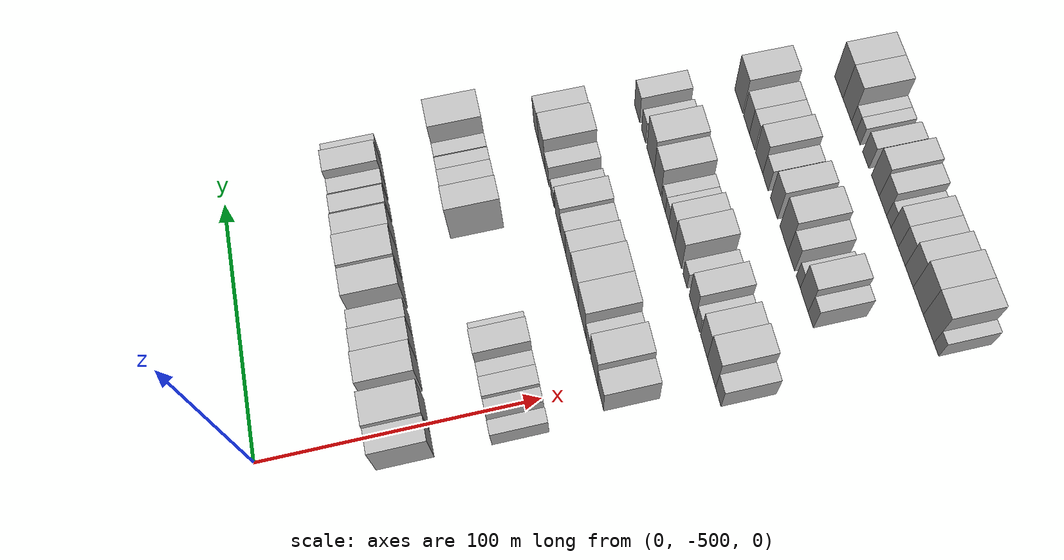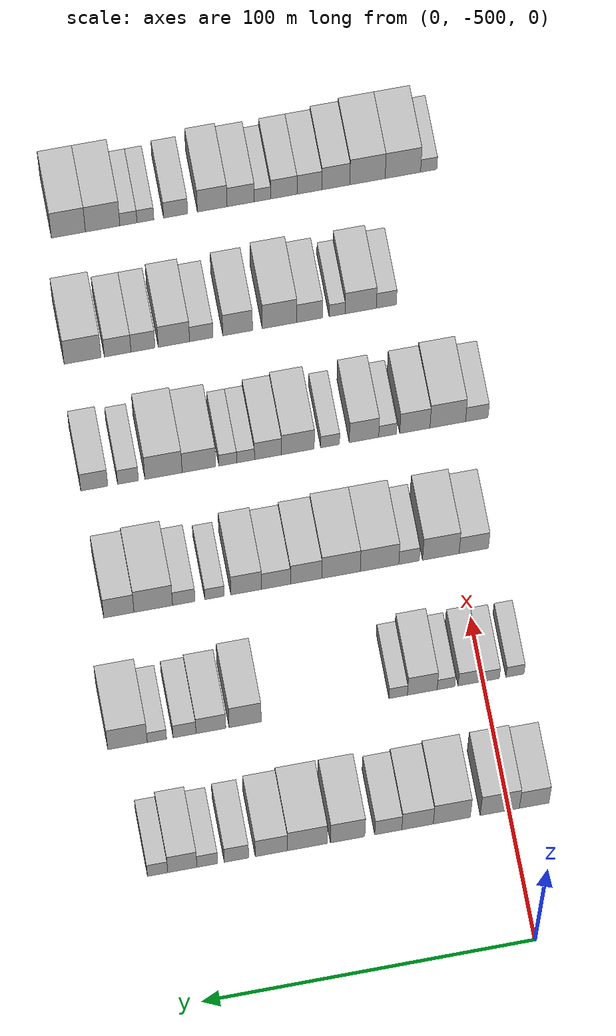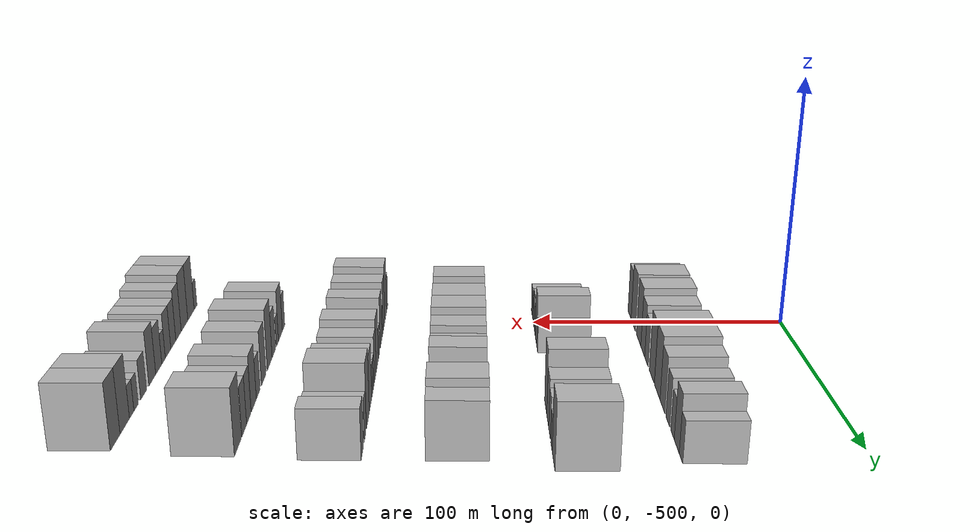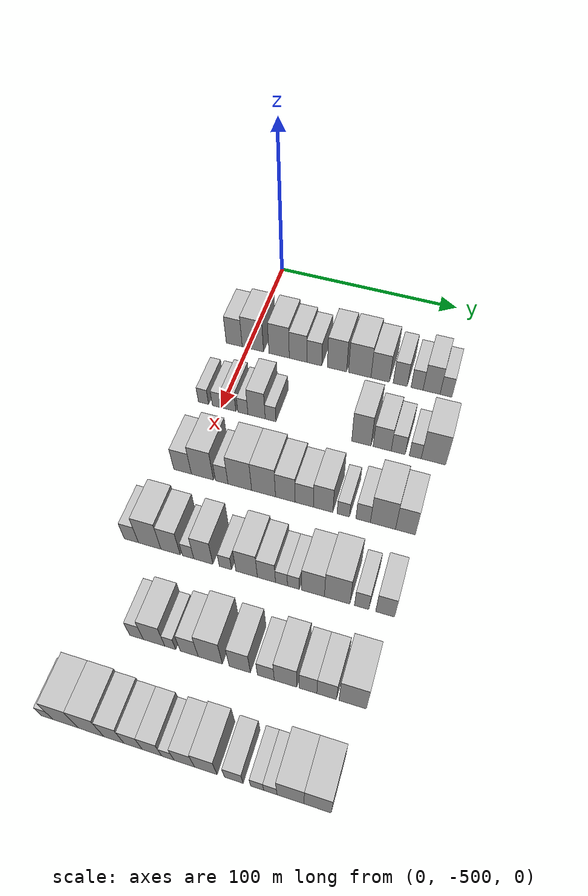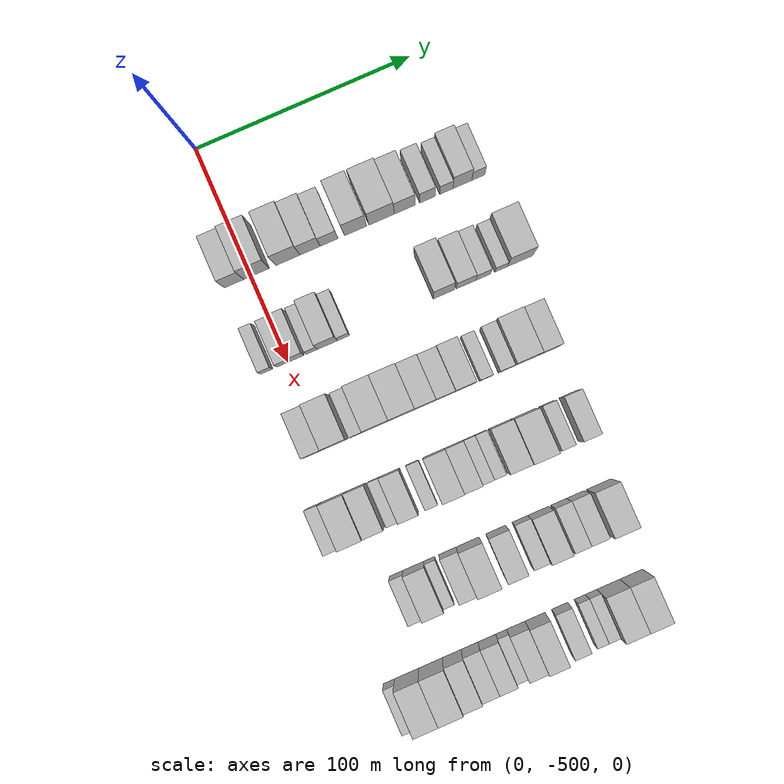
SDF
<sdf version="1.6">
 <world name="default">
  <model name="building_15">
   <static>1</static>
   <pose>50.0000 -507.4987 0 0.000000 0.000000 0.000000</pose>
   <link name="link">
    <pose>0 0 10.50 0 0 0</pose>
    <collision name="collision"><geometry><box><size>20.0000 8.9138 21.0000</size></box></geometry></collision>
    <visual name="visual">
     <cast_shadows>0</cast_shadows>
     <geometry><box><size>20.0000 8.9138 21.0000</size></box></geometry>
     <material>
      <script>
       <uri>model://HANNAS_wall/materials/scripts</uri>
       <uri>model://HANNAS_wall/materials/textures</uri>
       <name>vrc/HANNAS_wall</name>
      </script>
     </material>
    </visual>
   </link>
  </model>
  <model name="building_16">
   <static>1</static>
   <pose>50.0000 -497.1252 0 0.000000 0.000000 0.000000</pose>
   <link name="link">
    <pose>0 0 12.00 0 0 0</pose>
    <collision name="collision"><geometry><box><size>20.0000 11.8332 24.0000</size></box></geometry></collision>
    <visual name="visual">
     <cast_shadows>0</cast_shadows>
     <geometry><box><size>20.0000 11.8332 24.0000</size></box></geometry>
     <material>
      <script>
       <uri>model://HANNAS_wall/materials/scripts</uri>
       <uri>model://HANNAS_wall/materials/textures</uri>
       <name>vrc/HANNAS_wall</name>
      </script>
     </material>
    </visual>
   </link>
  </model>
  <model name="building_17">
   <static>1</static>
   <pose>50.0000 -482.6273 0 0.000000 0.000000 0.000000</pose>
   <link name="link">
    <pose>0 0 12.00 0 0 0</pose>
    <collision name="collision"><geometry><box><size>20.0000 11.1627 24.0000</size></box></geometry></collision>
    <visual name="visual">
     <cast_shadows>0</cast_shadows>
     <geometry><box><size>20.0000 11.1627 24.0000</size></box></geometry>
     <material>
      <script>
       <uri>model://HANNAS_wall/materials/scripts</uri>
       <uri>model://HANNAS_wall/materials/textures</uri>
       <name>vrc/HANNAS_wall</name>
      </script>
     </material>
    </visual>
   </link>
  </model>
  <model name="building_18">
   <static>1</static>
   <pose>50.0000 -472.3004 0 0.000000 0.000000 0.000000</pose>
   <link name="link">
    <pose>0 0 10.50 0 0 0</pose>
    <collision name="collision"><geometry><box><size>20.0000 9.4911 21.0000</size></box></geometry></collision>
    <visual name="visual">
     <cast_shadows>0</cast_shadows>
     <geometry><box><size>20.0000 9.4911 21.0000</size></box></geometry>
     <material>
      <script>
       <uri>model://HANNAS_wall/materials/scripts</uri>
       <uri>model://HANNAS_wall/materials/textures</uri>
       <name>vrc/HANNAS_wall</name>
      </script>
     </material>
    </visual>
   </link>
  </model>
  <model name="building_19">
   <static>1</static>
   <pose>50.0000 -463.4733 0 0.000000 0.000000 0.000000</pose>
   <link name="link">
    <pose>0 0 9.00 0 0 0</pose>
    <collision name="collision"><geometry><box><size>20.0000 8.1629 18.0000</size></box></geometry></collision>
    <visual name="visual">
     <cast_shadows>0</cast_shadows>
     <geometry><box><size>20.0000 8.1629 18.0000</size></box></geometry>
     <material>
      <script>
       <uri>model://HANNAS_wall/materials/scripts</uri>
       <uri>model://HANNAS_wall/materials/textures</uri>
       <name>vrc/HANNAS_wall</name>
      </script>
     </material>
    </visual>
   </link>
  </model>
  <model name="building_20">
   <static>1</static>
   <pose>50.0000 -451.2165 0 0.000000 0.000000 0.000000</pose>
   <link name="link">
    <pose>0 0 12.00 0 0 0</pose>
    <collision name="collision"><geometry><box><size>20.0000 10.3507 24.0000</size></box></geometry></collision>
    <visual name="visual">
     <cast_shadows>0</cast_shadows>
     <geometry><box><size>20.0000 10.3507 24.0000</size></box></geometry>
     <material>
      <script>
       <uri>model://HANNAS_wall/materials/scripts</uri>
       <uri>model://HANNAS_wall/materials/textures</uri>
       <name>vrc/HANNAS_wall</name>
      </script>
     </material>
    </visual>
   </link>
  </model>
  <model name="building_21">
   <static>1</static>
   <pose>50.0000 -439.0764 0 0.000000 0.000000 0.000000</pose>
   <link name="link">
    <pose>0 0 12.00 0 0 0</pose>
    <collision name="collision"><geometry><box><size>20.0000 11.9295 24.0000</size></box></geometry></collision>
    <visual name="visual">
     <cast_shadows>0</cast_shadows>
     <geometry><box><size>20.0000 11.9295 24.0000</size></box></geometry>
     <material>
      <script>
       <uri>model://HANNAS_wall/materials/scripts</uri>
       <uri>model://HANNAS_wall/materials/textures</uri>
       <name>vrc/HANNAS_wall</name>
      </script>
     </material>
    </visual>
   </link>
  </model>
  <model name="building_22">
   <static>1</static>
   <pose>50.0000 -428.2637 0 0.000000 0.000000 0.000000</pose>
   <link name="link">
    <pose>0 0 10.50 0 0 0</pose>
    <collision name="collision"><geometry><box><size>20.0000 9.6959 21.0000</size></box></geometry></collision>
    <visual name="visual">
     <cast_shadows>0</cast_shadows>
     <geometry><box><size>20.0000 9.6959 21.0000</size></box></geometry>
     <material>
      <script>
       <uri>model://HANNAS_wall/materials/scripts</uri>
       <uri>model://HANNAS_wall/materials/textures</uri>
       <name>vrc/HANNAS_wall</name>
      </script>
     </material>
    </visual>
   </link>
  </model>
  <model name="building_23">
   <static>1</static>
   <pose>50.0000 -417.7534 0 0.000000 0.000000 0.000000</pose>
   <link name="link">
    <pose>0 0 9.00 0 0 0</pose>
    <collision name="collision"><geometry><box><size>20.0000 7.3249 18.0000</size></box></geometry></collision>
    <visual name="visual">
     <cast_shadows>0</cast_shadows>
     <geometry><box><size>20.0000 7.3249 18.0000</size></box></geometry>
     <material>
      <script>
       <uri>model://HANNAS_wall/materials/scripts</uri>
       <uri>model://HANNAS_wall/materials/textures</uri>
       <name>vrc/HANNAS_wall</name>
      </script>
     </material>
    </visual>
   </link>
  </model>
  <model name="building_24">
   <static>1</static>
   <pose>50.0000 -408.9823 0 0.000000 0.000000 0.000000</pose>
   <link name="link">
    <pose>0 0 7.50 0 0 0</pose>
    <collision name="collision"><geometry><box><size>20.0000 6.2171 15.0000</size></box></geometry></collision>
    <visual name="visual">
     <cast_shadows>0</cast_shadows>
     <geometry><box><size>20.0000 6.2171 15.0000</size></box></geometry>
     <material>
      <script>
       <uri>model://HANNAS_wall/materials/scripts</uri>
       <uri>model://HANNAS_wall/materials/textures</uri>
       <name>vrc/HANNAS_wall</name>
      </script>
     </material>
    </visual>
   </link>
  </model>
  <model name="building_25">
   <static>1</static>
   <pose>50.0000 -401.4881 0 0.000000 0.000000 0.000000</pose>
   <link name="link">
    <pose>0 0 10.50 0 0 0</pose>
    <collision name="collision"><geometry><box><size>20.0000 8.7713 21.0000</size></box></geometry></collision>
    <visual name="visual">
     <cast_shadows>0</cast_shadows>
     <geometry><box><size>20.0000 8.7713 21.0000</size></box></geometry>
     <material>
      <script>
       <uri>model://HANNAS_wall/materials/scripts</uri>
       <uri>model://HANNAS_wall/materials/textures</uri>
       <name>vrc/HANNAS_wall</name>
      </script>
     </material>
    </visual>
   </link>
  </model>
  <model name="building_26">
   <static>1</static>
   <pose>50.0000 -394.0560 0 0.000000 0.000000 0.000000</pose>
   <link name="link">
    <pose>0 0 7.50 0 0 0</pose>
    <collision name="collision"><geometry><box><size>20.0000 6.0929 15.0000</size></box></geometry></collision>
    <visual name="visual">
     <cast_shadows>0</cast_shadows>
     <geometry><box><size>20.0000 6.0929 15.0000</size></box></geometry>
     <material>
      <script>
       <uri>model://HANNAS_wall/materials/scripts</uri>
       <uri>model://HANNAS_wall/materials/textures</uri>
       <name>vrc/HANNAS_wall</name>
      </script>
     </material>
    </visual>
   </link>
  </model>
  <model name="building_149">
   <static>1</static>
   <pose>90.0000 -509.5419 0 0.000000 0.000000 0.000000</pose>
   <link name="link">
    <pose>0 0 6.00 0 0 0</pose>
    <collision name="collision"><geometry><box><size>20.0000 5.4632 12.0000</size></box></geometry></collision>
    <visual name="visual">
     <cast_shadows>0</cast_shadows>
     <geometry><box><size>20.0000 5.4632 12.0000</size></box></geometry>
     <material>
      <script>
       <uri>model://HANNAS_wall/materials/scripts</uri>
       <uri>model://HANNAS_wall/materials/textures</uri>
       <name>vrc/HANNAS_wall</name>
      </script>
     </material>
    </visual>
   </link>
  </model>
  <model name="building_150">
   <static>1</static>
   <pose>90.0000 -502.0837 0 0.000000 0.000000 0.000000</pose>
   <link name="link">
    <pose>0 0 6.00 0 0 0</pose>
    <collision name="collision"><geometry><box><size>20.0000 5.4531 12.0000</size></box></geometry></collision>
    <visual name="visual">
     <cast_shadows>0</cast_shadows>
     <geometry><box><size>20.0000 5.4531 12.0000</size></box></geometry>
     <material>
      <script>
       <uri>model://HANNAS_wall/materials/scripts</uri>
       <uri>model://HANNAS_wall/materials/textures</uri>
       <name>vrc/HANNAS_wall</name>
      </script>
     </material>
    </visual>
   </link>
  </model>
  <model name="building_151">
   <static>1</static>
   <pose>90.0000 -495.8211 0 0.000000 0.000000 0.000000</pose>
   <link name="link">
    <pose>0 0 7.50 0 0 0</pose>
    <collision name="collision"><geometry><box><size>20.0000 7.0720 15.0000</size></box></geometry></collision>
    <visual name="visual">
     <cast_shadows>0</cast_shadows>
     <geometry><box><size>20.0000 7.0720 15.0000</size></box></geometry>
     <material>
      <script>
       <uri>model://HANNAS_wall/materials/scripts</uri>
       <uri>model://HANNAS_wall/materials/textures</uri>
       <name>vrc/HANNAS_wall</name>
      </script>
     </material>
    </visual>
   </link>
  </model>
  <model name="building_152">
   <static>1</static>
   <pose>90.0000 -488.6109 0 0.000000 0.000000 0.000000</pose>
   <link name="link">
    <pose>0 0 6.00 0 0 0</pose>
    <collision name="collision"><geometry><box><size>20.0000 5.3484 12.0000</size></box></geometry></collision>
    <visual name="visual">
     <cast_shadows>0</cast_shadows>
     <geometry><box><size>20.0000 5.3484 12.0000</size></box></geometry>
     <material>
      <script>
       <uri>model://HANNAS_wall/materials/scripts</uri>
       <uri>model://HANNAS_wall/materials/textures</uri>
       <name>vrc/HANNAS_wall</name>
      </script>
     </material>
    </visual>
   </link>
  </model>
  <model name="building_153">
   <static>1</static>
   <pose>90.0000 -481.4216 0 0.000000 0.000000 0.000000</pose>
   <link name="link">
    <pose>0 0 10.50 0 0 0</pose>
    <collision name="collision"><geometry><box><size>20.0000 9.0302 21.0000</size></box></geometry></collision>
    <visual name="visual">
     <cast_shadows>0</cast_shadows>
     <geometry><box><size>20.0000 9.0302 21.0000</size></box></geometry>
     <material>
      <script>
       <uri>model://HANNAS_wall/materials/scripts</uri>
       <uri>model://HANNAS_wall/materials/textures</uri>
       <name>vrc/HANNAS_wall</name>
      </script>
     </material>
    </visual>
   </link>
  </model>
  <model name="building_154">
   <static>1</static>
   <pose>90.0000 -474.1215 0 0.000000 0.000000 0.000000</pose>
   <link name="link">
    <pose>0 0 6.00 0 0 0</pose>
    <collision name="collision"><geometry><box><size>20.0000 5.5701 12.0000</size></box></geometry></collision>
    <visual name="visual">
     <cast_shadows>0</cast_shadows>
     <geometry><box><size>20.0000 5.5701 12.0000</size></box></geometry>
     <material>
      <script>
       <uri>model://HANNAS_wall/materials/scripts</uri>
       <uri>model://HANNAS_wall/materials/textures</uri>
       <name>vrc/HANNAS_wall</name>
      </script>
     </material>
    </visual>
   </link>
  </model>
  <model name="building_155">
   <static>1</static>
   <pose>90.0000 -427.7815 0 0.000000 0.000000 0.000000</pose>
   <link name="link">
    <pose>0 0 12.00 0 0 0</pose>
    <collision name="collision"><geometry><box><size>20.0000 9.7033 24.0000</size></box></geometry></collision>
    <visual name="visual">
     <cast_shadows>0</cast_shadows>
     <geometry><box><size>20.0000 9.7033 24.0000</size></box></geometry>
     <material>
      <script>
       <uri>model://HANNAS_wall/materials/scripts</uri>
       <uri>model://HANNAS_wall/materials/textures</uri>
       <name>vrc/HANNAS_wall</name>
      </script>
     </material>
    </visual>
   </link>
  </model>
  <model name="building_156">
   <static>1</static>
   <pose>90.0000 -417.4404 0 0.000000 0.000000 0.000000</pose>
   <link name="link">
    <pose>0 0 9.00 0 0 0</pose>
    <collision name="collision"><geometry><box><size>20.0000 8.9790 18.0000</size></box></geometry></collision>
    <visual name="visual">
     <cast_shadows>0</cast_shadows>
     <geometry><box><size>20.0000 8.9790 18.0000</size></box></geometry>
     <material>
      <script>
       <uri>model://HANNAS_wall/materials/scripts</uri>
       <uri>model://HANNAS_wall/materials/textures</uri>
       <name>vrc/HANNAS_wall</name>
      </script>
     </material>
    </visual>
   </link>
  </model>
  <model name="building_157">
   <static>1</static>
   <pose>90.0000 -409.4877 0 0.000000 0.000000 0.000000</pose>
   <link name="link">
    <pose>0 0 7.50 0 0 0</pose>
    <collision name="collision"><geometry><box><size>20.0000 6.9265 15.0000</size></box></geometry></collision>
    <visual name="visual">
     <cast_shadows>0</cast_shadows>
     <geometry><box><size>20.0000 6.9265 15.0000</size></box></geometry>
     <material>
      <script>
       <uri>model://HANNAS_wall/materials/scripts</uri>
       <uri>model://HANNAS_wall/materials/textures</uri>
       <name>vrc/HANNAS_wall</name>
      </script>
     </material>
    </visual>
   </link>
  </model>
  <model name="building_158">
   <static>1</static>
   <pose>90.0000 -401.1122 0 0.000000 0.000000 0.000000</pose>
   <link name="link">
    <pose>0 0 6.00 0 0 0</pose>
    <collision name="collision"><geometry><box><size>20.0000 5.8246 12.0000</size></box></geometry></collision>
    <visual name="visual">
     <cast_shadows>0</cast_shadows>
     <geometry><box><size>20.0000 5.8246 12.0000</size></box></geometry>
     <material>
      <script>
       <uri>model://HANNAS_wall/materials/scripts</uri>
       <uri>model://HANNAS_wall/materials/textures</uri>
       <name>vrc/HANNAS_wall</name>
      </script>
     </material>
    </visual>
   </link>
  </model>
  <model name="building_159">
   <static>1</static>
   <pose>90.0000 -392.2469 0 0.000000 0.000000 0.000000</pose>
   <link name="link">
    <pose>0 0 12.00 0 0 0</pose>
    <collision name="collision"><geometry><box><size>20.0000 11.9060 24.0000</size></box></geometry></collision>
    <visual name="visual">
     <cast_shadows>0</cast_shadows>
     <geometry><box><size>20.0000 11.9060 24.0000</size></box></geometry>
     <material>
      <script>
       <uri>model://HANNAS_wall/materials/scripts</uri>
       <uri>model://HANNAS_wall/materials/textures</uri>
       <name>vrc/HANNAS_wall</name>
      </script>
     </material>
    </visual>
   </link>
  </model>
  <model name="building_283">
   <static>1</static>
   <pose>130.0000 -504.8158 0 0.000000 0.000000 0.000000</pose>
   <link name="link">
    <pose>0 0 9.00 0 0 0</pose>
    <collision name="collision"><geometry><box><size>20.0000 8.9487 18.0000</size></box></geometry></collision>
    <visual name="visual">
     <cast_shadows>0</cast_shadows>
     <geometry><box><size>20.0000 8.9487 18.0000</size></box></geometry>
     <material>
      <script>
       <uri>model://HANNAS_wall/materials/scripts</uri>
       <uri>model://HANNAS_wall/materials/textures</uri>
       <name>vrc/HANNAS_wall</name>
      </script>
     </material>
    </visual>
   </link>
  </model>
  <model name="building_284">
   <static>1</static>
   <pose>130.0000 -494.7741 0 0.000000 0.000000 0.000000</pose>
   <link name="link">
    <pose>0 0 12.00 0 0 0</pose>
    <collision name="collision"><geometry><box><size>20.0000 11.1348 24.0000</size></box></geometry></collision>
    <visual name="visual">
     <cast_shadows>0</cast_shadows>
     <geometry><box><size>20.0000 11.1348 24.0000</size></box></geometry>
     <material>
      <script>
       <uri>model://HANNAS_wall/materials/scripts</uri>
       <uri>model://HANNAS_wall/materials/textures</uri>
       <name>vrc/HANNAS_wall</name>
      </script>
     </material>
    </visual>
   </link>
  </model>
  <model name="building_285">
   <static>1</static>
   <pose>130.0000 -485.0768 0 0.000000 0.000000 0.000000</pose>
   <link name="link">
    <pose>0 0 7.50 0 0 0</pose>
    <collision name="collision"><geometry><box><size>20.0000 6.2598 15.0000</size></box></geometry></collision>
    <visual name="visual">
     <cast_shadows>0</cast_shadows>
     <geometry><box><size>20.0000 6.2598 15.0000</size></box></geometry>
     <material>
      <script>
       <uri>model://HANNAS_wall/materials/scripts</uri>
       <uri>model://HANNAS_wall/materials/textures</uri>
       <name>vrc/HANNAS_wall</name>
      </script>
     </material>
    </visual>
   </link>
  </model>
  <model name="building_286">
   <static>1</static>
   <pose>130.0000 -476.0786 0 0.000000 0.000000 0.000000</pose>
   <link name="link">
    <pose>0 0 12.00 0 0 0</pose>
    <collision name="collision"><geometry><box><size>20.0000 11.7365 24.0000</size></box></geometry></collision>
    <visual name="visual">
     <cast_shadows>0</cast_shadows>
     <geometry><box><size>20.0000 11.7365 24.0000</size></box></geometry>
     <material>
      <script>
       <uri>model://HANNAS_wall/materials/scripts</uri>
       <uri>model://HANNAS_wall/materials/textures</uri>
       <name>vrc/HANNAS_wall</name>
      </script>
     </material>
    </visual>
   </link>
  </model>
  <model name="building_287">
   <static>1</static>
   <pose>130.0000 -464.3657 0 0.000000 0.000000 0.000000</pose>
   <link name="link">
    <pose>0 0 12.00 0 0 0</pose>
    <collision name="collision"><geometry><box><size>20.0000 11.6894 24.0000</size></box></geometry></collision>
    <visual name="visual">
     <cast_shadows>0</cast_shadows>
     <geometry><box><size>20.0000 11.6894 24.0000</size></box></geometry>
     <material>
      <script>
       <uri>model://HANNAS_wall/materials/scripts</uri>
       <uri>model://HANNAS_wall/materials/textures</uri>
       <name>vrc/HANNAS_wall</name>
      </script>
     </material>
    </visual>
   </link>
  </model>
  <model name="building_288">
   <static>1</static>
   <pose>130.0000 -453.7341 0 0.000000 0.000000 0.000000</pose>
   <link name="link">
    <pose>0 0 10.50 0 0 0</pose>
    <collision name="collision"><geometry><box><size>20.0000 9.5737 21.0000</size></box></geometry></collision>
    <visual name="visual">
     <cast_shadows>0</cast_shadows>
     <geometry><box><size>20.0000 9.5737 21.0000</size></box></geometry>
     <material>
      <script>
       <uri>model://HANNAS_wall/materials/scripts</uri>
       <uri>model://HANNAS_wall/materials/textures</uri>
       <name>vrc/HANNAS_wall</name>
      </script>
     </material>
    </visual>
   </link>
  </model>
  <model name="building_289">
   <static>1</static>
   <pose>130.0000 -444.5728 0 0.000000 0.000000 0.000000</pose>
   <link name="link">
    <pose>0 0 9.00 0 0 0</pose>
    <collision name="collision"><geometry><box><size>20.0000 8.7490 18.0000</size></box></geometry></collision>
    <visual name="visual">
     <cast_shadows>0</cast_shadows>
     <geometry><box><size>20.0000 8.7490 18.0000</size></box></geometry>
     <material>
      <script>
       <uri>model://HANNAS_wall/materials/scripts</uri>
       <uri>model://HANNAS_wall/materials/textures</uri>
       <name>vrc/HANNAS_wall</name>
      </script>
     </material>
    </visual>
   </link>
  </model>
  <model name="building_290">
   <static>1</static>
   <pose>130.0000 -435.5243 0 0.000000 0.000000 0.000000</pose>
   <link name="link">
    <pose>0 0 10.50 0 0 0</pose>
    <collision name="collision"><geometry><box><size>20.0000 9.3479 21.0000</size></box></geometry></collision>
    <visual name="visual">
     <cast_shadows>0</cast_shadows>
     <geometry><box><size>20.0000 9.3479 21.0000</size></box></geometry>
     <material>
      <script>
       <uri>model://HANNAS_wall/materials/scripts</uri>
       <uri>model://HANNAS_wall/materials/textures</uri>
       <name>vrc/HANNAS_wall</name>
      </script>
     </material>
    </visual>
   </link>
  </model>
  <model name="building_291">
   <static>1</static>
   <pose>130.0000 -425.8994 0 0.000000 0.000000 0.000000</pose>
   <link name="link">
    <pose>0 0 6.00 0 0 0</pose>
    <collision name="collision"><geometry><box><size>20.0000 5.9021 12.0000</size></box></geometry></collision>
    <visual name="visual">
     <cast_shadows>0</cast_shadows>
     <geometry><box><size>20.0000 5.9021 12.0000</size></box></geometry>
     <material>
      <script>
       <uri>model://HANNAS_wall/materials/scripts</uri>
       <uri>model://HANNAS_wall/materials/textures</uri>
       <name>vrc/HANNAS_wall</name>
      </script>
     </material>
    </visual>
   </link>
  </model>
  <model name="building_292">
   <static>1</static>
   <pose>130.0000 -416.5367 0 0.000000 0.000000 0.000000</pose>
   <link name="link">
    <pose>0 0 7.50 0 0 0</pose>
    <collision name="collision"><geometry><box><size>20.0000 6.8232 15.0000</size></box></geometry></collision>
    <visual name="visual">
     <cast_shadows>0</cast_shadows>
     <geometry><box><size>20.0000 6.8232 15.0000</size></box></geometry>
     <material>
      <script>
       <uri>model://HANNAS_wall/materials/scripts</uri>
       <uri>model://HANNAS_wall/materials/textures</uri>
       <name>vrc/HANNAS_wall</name>
      </script>
     </material>
    </visual>
   </link>
  </model>
  <model name="building_293">
   <static>1</static>
   <pose>130.0000 -407.2753 0 0.000000 0.000000 0.000000</pose>
   <link name="link">
    <pose>0 0 12.00 0 0 0</pose>
    <collision name="collision"><geometry><box><size>20.0000 11.6998 24.0000</size></box></geometry></collision>
    <visual name="visual">
     <cast_shadows>0</cast_shadows>
     <geometry><box><size>20.0000 11.6998 24.0000</size></box></geometry>
     <material>
      <script>
       <uri>model://HANNAS_wall/materials/scripts</uri>
       <uri>model://HANNAS_wall/materials/textures</uri>
       <name>vrc/HANNAS_wall</name>
      </script>
     </material>
    </visual>
   </link>
  </model>
  <model name="building_294">
   <static>1</static>
   <pose>130.0000 -396.8353 0 0.000000 0.000000 0.000000</pose>
   <link name="link">
    <pose>0 0 10.50 0 0 0</pose>
    <collision name="collision"><geometry><box><size>20.0000 9.1802 21.0000</size></box></geometry></collision>
    <visual name="visual">
     <cast_shadows>0</cast_shadows>
     <geometry><box><size>20.0000 9.1802 21.0000</size></box></geometry>
     <material>
      <script>
       <uri>model://HANNAS_wall/materials/scripts</uri>
       <uri>model://HANNAS_wall/materials/textures</uri>
       <name>vrc/HANNAS_wall</name>
      </script>
     </material>
    </visual>
   </link>
  </model>
  <model name="building_414">
   <static>1</static>
   <pose>170.0000 -513.5132 0 0.000000 0.000000 0.000000</pose>
   <link name="link">
    <pose>0 0 7.50 0 0 0</pose>
    <collision name="collision"><geometry><box><size>20.0000 6.9000 15.0000</size></box></geometry></collision>
    <visual name="visual">
     <cast_shadows>0</cast_shadows>
     <geometry><box><size>20.0000 6.9000 15.0000</size></box></geometry>
     <material>
      <script>
       <uri>model://HANNAS_wall/materials/scripts</uri>
       <uri>model://HANNAS_wall/materials/textures</uri>
       <name>vrc/HANNAS_wall</name>
      </script>
     </material>
    </visual>
   </link>
  </model>
  <model name="building_415">
   <static>1</static>
   <pose>170.0000 -504.6056 0 0.000000 0.000000 0.000000</pose>
   <link name="link">
    <pose>0 0 12.00 0 0 0</pose>
    <collision name="collision"><geometry><box><size>20.0000 10.9152 24.0000</size></box></geometry></collision>
    <visual name="visual">
     <cast_shadows>0</cast_shadows>
     <geometry><box><size>20.0000 10.9152 24.0000</size></box></geometry>
     <material>
      <script>
       <uri>model://HANNAS_wall/materials/scripts</uri>
       <uri>model://HANNAS_wall/materials/textures</uri>
       <name>vrc/HANNAS_wall</name>
      </script>
     </material>
    </visual>
   </link>
  </model>
  <model name="building_416">
   <static>1</static>
   <pose>170.0000 -494.5322 0 0.000000 0.000000 0.000000</pose>
   <link name="link">
    <pose>0 0 10.50 0 0 0</pose>
    <collision name="collision"><geometry><box><size>20.0000 9.2314 21.0000</size></box></geometry></collision>
    <visual name="visual">
     <cast_shadows>0</cast_shadows>
     <geometry><box><size>20.0000 9.2314 21.0000</size></box></geometry>
     <material>
      <script>
       <uri>model://HANNAS_wall/materials/scripts</uri>
       <uri>model://HANNAS_wall/materials/textures</uri>
       <name>vrc/HANNAS_wall</name>
      </script>
     </material>
    </visual>
   </link>
  </model>
  <model name="building_417">
   <static>1</static>
   <pose>170.0000 -486.1932 0 0.000000 0.000000 0.000000</pose>
   <link name="link">
    <pose>0 0 6.00 0 0 0</pose>
    <collision name="collision"><geometry><box><size>20.0000 5.4466 12.0000</size></box></geometry></collision>
    <visual name="visual">
     <cast_shadows>0</cast_shadows>
     <geometry><box><size>20.0000 5.4466 12.0000</size></box></geometry>
     <material>
      <script>
       <uri>model://HANNAS_wall/materials/scripts</uri>
       <uri>model://HANNAS_wall/materials/textures</uri>
       <name>vrc/HANNAS_wall</name>
      </script>
     </material>
    </visual>
   </link>
  </model>
  <model name="building_418">
   <static>1</static>
   <pose>170.0000 -478.9654 0 0.000000 0.000000 0.000000</pose>
   <link name="link">
    <pose>0 0 10.50 0 0 0</pose>
    <collision name="collision"><geometry><box><size>20.0000 9.0091 21.0000</size></box></geometry></collision>
    <visual name="visual">
     <cast_shadows>0</cast_shadows>
     <geometry><box><size>20.0000 9.0091 21.0000</size></box></geometry>
     <material>
      <script>
       <uri>model://HANNAS_wall/materials/scripts</uri>
       <uri>model://HANNAS_wall/materials/textures</uri>
       <name>vrc/HANNAS_wall</name>
      </script>
     </material>
    </visual>
   </link>
  </model>
  <model name="building_419">
   <static>1</static>
   <pose>170.0000 -468.5947 0 0.000000 0.000000 0.000000</pose>
   <link name="link">
    <pose>0 0 6.00 0 0 0</pose>
    <collision name="collision"><geometry><box><size>20.0000 5.7323 12.0000</size></box></geometry></collision>
    <visual name="visual">
     <cast_shadows>0</cast_shadows>
     <geometry><box><size>20.0000 5.7323 12.0000</size></box></geometry>
     <material>
      <script>
       <uri>model://HANNAS_wall/materials/scripts</uri>
       <uri>model://HANNAS_wall/materials/textures</uri>
       <name>vrc/HANNAS_wall</name>
      </script>
     </material>
    </visual>
   </link>
  </model>
  <model name="building_420">
   <static>1</static>
   <pose>170.0000 -458.7482 0 0.000000 0.000000 0.000000</pose>
   <link name="link">
    <pose>0 0 10.50 0 0 0</pose>
    <collision name="collision"><geometry><box><size>20.0000 9.9608 21.0000</size></box></geometry></collision>
    <visual name="visual">
     <cast_shadows>0</cast_shadows>
     <geometry><box><size>20.0000 9.9608 21.0000</size></box></geometry>
     <material>
      <script>
       <uri>model://HANNAS_wall/materials/scripts</uri>
       <uri>model://HANNAS_wall/materials/textures</uri>
       <name>vrc/HANNAS_wall</name>
      </script>
     </material>
    </visual>
   </link>
  </model>
  <model name="building_421">
   <static>1</static>
   <pose>170.0000 -449.6186 0 0.000000 0.000000 0.000000</pose>
   <link name="link">
    <pose>0 0 9.00 0 0 0</pose>
    <collision name="collision"><geometry><box><size>20.0000 8.2983 18.0000</size></box></geometry></collision>
    <visual name="visual">
     <cast_shadows>0</cast_shadows>
     <geometry><box><size>20.0000 8.2983 18.0000</size></box></geometry>
     <material>
      <script>
       <uri>model://HANNAS_wall/materials/scripts</uri>
       <uri>model://HANNAS_wall/materials/textures</uri>
       <name>vrc/HANNAS_wall</name>
      </script>
     </material>
    </visual>
   </link>
  </model>
  <model name="building_422">
   <static>1</static>
   <pose>170.0000 -442.7431 0 0.000000 0.000000 0.000000</pose>
   <link name="link">
    <pose>0 0 6.00 0 0 0</pose>
    <collision name="collision"><geometry><box><size>20.0000 5.4528 12.0000</size></box></geometry></collision>
    <visual name="visual">
     <cast_shadows>0</cast_shadows>
     <geometry><box><size>20.0000 5.4528 12.0000</size></box></geometry>
     <material>
      <script>
       <uri>model://HANNAS_wall/materials/scripts</uri>
       <uri>model://HANNAS_wall/materials/textures</uri>
       <name>vrc/HANNAS_wall</name>
      </script>
     </material>
    </visual>
   </link>
  </model>
  <model name="building_423">
   <static>1</static>
   <pose>170.0000 -437.3089 0 0.000000 0.000000 0.000000</pose>
   <link name="link">
    <pose>0 0 6.00 0 0 0</pose>
    <collision name="collision"><geometry><box><size>20.0000 5.4155 12.0000</size></box></geometry></collision>
    <visual name="visual">
     <cast_shadows>0</cast_shadows>
     <geometry><box><size>20.0000 5.4155 12.0000</size></box></geometry>
     <material>
      <script>
       <uri>model://HANNAS_wall/materials/scripts</uri>
       <uri>model://HANNAS_wall/materials/textures</uri>
       <name>vrc/HANNAS_wall</name>
      </script>
     </material>
    </visual>
   </link>
  </model>
  <model name="building_424">
   <static>1</static>
   <pose>170.0000 -428.4725 0 0.000000 0.000000 0.000000</pose>
   <link name="link">
    <pose>0 0 10.50 0 0 0</pose>
    <collision name="collision"><geometry><box><size>20.0000 10.2572 21.0000</size></box></geometry></collision>
    <visual name="visual">
     <cast_shadows>0</cast_shadows>
     <geometry><box><size>20.0000 10.2572 21.0000</size></box></geometry>
     <material>
      <script>
       <uri>model://HANNAS_wall/materials/scripts</uri>
       <uri>model://HANNAS_wall/materials/textures</uri>
       <name>vrc/HANNAS_wall</name>
      </script>
     </material>
    </visual>
   </link>
  </model>
  <model name="building_425">
   <static>1</static>
   <pose>170.0000 -417.6743 0 0.000000 0.000000 0.000000</pose>
   <link name="link">
    <pose>0 0 12.00 0 0 0</pose>
    <collision name="collision"><geometry><box><size>20.0000 11.3393 24.0000</size></box></geometry></collision>
    <visual name="visual">
     <cast_shadows>0</cast_shadows>
     <geometry><box><size>20.0000 11.3393 24.0000</size></box></geometry>
     <material>
      <script>
       <uri>model://HANNAS_wall/materials/scripts</uri>
       <uri>model://HANNAS_wall/materials/textures</uri>
       <name>vrc/HANNAS_wall</name>
      </script>
     </material>
    </visual>
   </link>
  </model>
  <model name="building_426">
   <static>1</static>
   <pose>170.0000 -406.8315 0 0.000000 0.000000 0.000000</pose>
   <link name="link">
    <pose>0 0 7.50 0 0 0</pose>
    <collision name="collision"><geometry><box><size>20.0000 6.3463 15.0000</size></box></geometry></collision>
    <visual name="visual">
     <cast_shadows>0</cast_shadows>
     <geometry><box><size>20.0000 6.3463 15.0000</size></box></geometry>
     <material>
      <script>
       <uri>model://HANNAS_wall/materials/scripts</uri>
       <uri>model://HANNAS_wall/materials/textures</uri>
       <name>vrc/HANNAS_wall</name>
      </script>
     </material>
    </visual>
   </link>
  </model>
  <model name="building_427">
   <static>1</static>
   <pose>170.0000 -396.5392 0 0.000000 0.000000 0.000000</pose>
   <link name="link">
    <pose>0 0 9.00 0 0 0</pose>
    <collision name="collision"><geometry><box><size>20.0000 8.2382 18.0000</size></box></geometry></collision>
    <visual name="visual">
     <cast_shadows>0</cast_shadows>
     <geometry><box><size>20.0000 8.2382 18.0000</size></box></geometry>
     <material>
      <script>
       <uri>model://HANNAS_wall/materials/scripts</uri>
       <uri>model://HANNAS_wall/materials/textures</uri>
       <name>vrc/HANNAS_wall</name>
      </script>
     </material>
    </visual>
   </link>
  </model>
  <model name="building_557">
   <static>1</static>
   <pose>210.0000 -493.4281 0 0.000000 0.000000 0.000000</pose>
   <link name="link">
    <pose>0 0 7.50 0 0 0</pose>
    <collision name="collision"><geometry><box><size>20.0000 6.1688 15.0000</size></box></geometry></collision>
    <visual name="visual">
     <cast_shadows>0</cast_shadows>
     <geometry><box><size>20.0000 6.1688 15.0000</size></box></geometry>
     <material>
      <script>
       <uri>model://HANNAS_wall/materials/scripts</uri>
       <uri>model://HANNAS_wall/materials/textures</uri>
       <name>vrc/HANNAS_wall</name>
      </script>
     </material>
    </visual>
   </link>
  </model>
  <model name="building_558">
   <static>1</static>
   <pose>210.0000 -485.5313 0 0.000000 0.000000 0.000000</pose>
   <link name="link">
    <pose>0 0 10.50 0 0 0</pose>
    <collision name="collision"><geometry><box><size>20.0000 9.6248 21.0000</size></box></geometry></collision>
    <visual name="visual">
     <cast_shadows>0</cast_shadows>
     <geometry><box><size>20.0000 9.6248 21.0000</size></box></geometry>
     <material>
      <script>
       <uri>model://HANNAS_wall/materials/scripts</uri>
       <uri>model://HANNAS_wall/materials/textures</uri>
       <name>vrc/HANNAS_wall</name>
      </script>
     </material>
    </visual>
   </link>
  </model>
  <model name="building_559">
   <static>1</static>
   <pose>210.0000 -478.2756 0 0.000000 0.000000 0.000000</pose>
   <link name="link">
    <pose>0 0 6.00 0 0 0</pose>
    <collision name="collision"><geometry><box><size>20.0000 4.8866 12.0000</size></box></geometry></collision>
    <visual name="visual">
     <cast_shadows>0</cast_shadows>
     <geometry><box><size>20.0000 4.8866 12.0000</size></box></geometry>
     <material>
      <script>
       <uri>model://HANNAS_wall/materials/scripts</uri>
       <uri>model://HANNAS_wall/materials/textures</uri>
       <name>vrc/HANNAS_wall</name>
      </script>
     </material>
    </visual>
   </link>
  </model>
  <model name="building_560">
   <static>1</static>
   <pose>210.0000 -469.8663 0 0.000000 0.000000 0.000000</pose>
   <link name="link">
    <pose>0 0 9.00 0 0 0</pose>
    <collision name="collision"><geometry><box><size>20.0000 7.9321 18.0000</size></box></geometry></collision>
    <visual name="visual">
     <cast_shadows>0</cast_shadows>
     <geometry><box><size>20.0000 7.9321 18.0000</size></box></geometry>
     <material>
      <script>
       <uri>model://HANNAS_wall/materials/scripts</uri>
       <uri>model://HANNAS_wall/materials/textures</uri>
       <name>vrc/HANNAS_wall</name>
      </script>
     </material>
    </visual>
   </link>
  </model>
  <model name="building_561">
   <static>1</static>
   <pose>210.0000 -460.5901 0 0.000000 0.000000 0.000000</pose>
   <link name="link">
    <pose>0 0 12.00 0 0 0</pose>
    <collision name="collision"><geometry><box><size>20.0000 10.6203 24.0000</size></box></geometry></collision>
    <visual name="visual">
     <cast_shadows>0</cast_shadows>
     <geometry><box><size>20.0000 10.6203 24.0000</size></box></geometry>
     <material>
      <script>
       <uri>model://HANNAS_wall/materials/scripts</uri>
       <uri>model://HANNAS_wall/materials/textures</uri>
       <name>vrc/HANNAS_wall</name>
      </script>
     </material>
    </visual>
   </link>
  </model>
  <model name="building_562">
   <static>1</static>
   <pose>210.0000 -447.7166 0 0.000000 0.000000 0.000000</pose>
   <link name="link">
    <pose>0 0 10.50 0 0 0</pose>
    <collision name="collision"><geometry><box><size>20.0000 9.1268 21.0000</size></box></geometry></collision>
    <visual name="visual">
     <cast_shadows>0</cast_shadows>
     <geometry><box><size>20.0000 9.1268 21.0000</size></box></geometry>
     <material>
      <script>
       <uri>model://HANNAS_wall/materials/scripts</uri>
       <uri>model://HANNAS_wall/materials/textures</uri>
       <name>vrc/HANNAS_wall</name>
      </script>
     </material>
    </visual>
   </link>
  </model>
  <model name="building_563">
   <static>1</static>
   <pose>210.0000 -436.5487 0 0.000000 0.000000 0.000000</pose>
   <link name="link">
    <pose>0 0 7.50 0 0 0</pose>
    <collision name="collision"><geometry><box><size>20.0000 7.2091 15.0000</size></box></geometry></collision>
    <visual name="visual">
     <cast_shadows>0</cast_shadows>
     <geometry><box><size>20.0000 7.2091 15.0000</size></box></geometry>
     <material>
      <script>
       <uri>model://HANNAS_wall/materials/scripts</uri>
       <uri>model://HANNAS_wall/materials/textures</uri>
       <name>vrc/HANNAS_wall</name>
      </script>
     </material>
    </visual>
   </link>
  </model>
  <model name="building_564">
   <static>1</static>
   <pose>210.0000 -428.1431 0 0.000000 0.000000 0.000000</pose>
   <link name="link">
    <pose>0 0 10.50 0 0 0</pose>
    <collision name="collision"><geometry><box><size>20.0000 9.6021 21.0000</size></box></geometry></collision>
    <visual name="visual">
     <cast_shadows>0</cast_shadows>
     <geometry><box><size>20.0000 9.6021 21.0000</size></box></geometry>
     <material>
      <script>
       <uri>model://HANNAS_wall/materials/scripts</uri>
       <uri>model://HANNAS_wall/materials/textures</uri>
       <name>vrc/HANNAS_wall</name>
      </script>
     </material>
    </visual>
   </link>
  </model>
  <model name="building_565">
   <static>1</static>
   <pose>210.0000 -418.6542 0 0.000000 0.000000 0.000000</pose>
   <link name="link">
    <pose>0 0 9.00 0 0 0</pose>
    <collision name="collision"><geometry><box><size>20.0000 7.3756 18.0000</size></box></geometry></collision>
    <visual name="visual">
     <cast_shadows>0</cast_shadows>
     <geometry><box><size>20.0000 7.3756 18.0000</size></box></geometry>
     <material>
      <script>
       <uri>model://HANNAS_wall/materials/scripts</uri>
       <uri>model://HANNAS_wall/materials/textures</uri>
       <name>vrc/HANNAS_wall</name>
      </script>
     </material>
    </visual>
   </link>
  </model>
  <model name="building_566">
   <static>1</static>
   <pose>210.0000 -410.8784 0 0.000000 0.000000 0.000000</pose>
   <link name="link">
    <pose>0 0 9.00 0 0 0</pose>
    <collision name="collision"><geometry><box><size>20.0000 8.1760 18.0000</size></box></geometry></collision>
    <visual name="visual">
     <cast_shadows>0</cast_shadows>
     <geometry><box><size>20.0000 8.1760 18.0000</size></box></geometry>
     <material>
      <script>
       <uri>model://HANNAS_wall/materials/scripts</uri>
       <uri>model://HANNAS_wall/materials/textures</uri>
       <name>vrc/HANNAS_wall</name>
      </script>
     </material>
    </visual>
   </link>
  </model>
  <model name="building_567">
   <static>1</static>
   <pose>210.0000 -400.1211 0 0.000000 0.000000 0.000000</pose>
   <link name="link">
    <pose>0 0 12.00 0 0 0</pose>
    <collision name="collision"><geometry><box><size>20.0000 11.3386 24.0000</size></box></geometry></collision>
    <visual name="visual">
     <cast_shadows>0</cast_shadows>
     <geometry><box><size>20.0000 11.3386 24.0000</size></box></geometry>
     <material>
      <script>
       <uri>model://HANNAS_wall/materials/scripts</uri>
       <uri>model://HANNAS_wall/materials/textures</uri>
       <name>vrc/HANNAS_wall</name>
      </script>
     </material>
    </visual>
   </link>
  </model>
  <model name="building_694">
   <static>1</static>
   <pose>250.0000 -514.2074 0 0.000000 0.000000 0.000000</pose>
   <link name="link">
    <pose>0 0 6.00 0 0 0</pose>
    <collision name="collision"><geometry><box><size>20.0000 5.0221 12.0000</size></box></geometry></collision>
    <visual name="visual">
     <cast_shadows>0</cast_shadows>
     <geometry><box><size>20.0000 5.0221 12.0000</size></box></geometry>
     <material>
      <script>
       <uri>model://HANNAS_wall/materials/scripts</uri>
       <uri>model://HANNAS_wall/materials/textures</uri>
       <name>vrc/HANNAS_wall</name>
      </script>
     </material>
    </visual>
   </link>
  </model>
  <model name="building_695">
   <static>1</static>
   <pose>250.0000 -506.2059 0 0.000000 0.000000 0.000000</pose>
   <link name="link">
    <pose>0 0 12.00 0 0 0</pose>
    <collision name="collision"><geometry><box><size>20.0000 10.9808 24.0000</size></box></geometry></collision>
    <visual name="visual">
     <cast_shadows>0</cast_shadows>
     <geometry><box><size>20.0000 10.9808 24.0000</size></box></geometry>
     <material>
      <script>
       <uri>model://HANNAS_wall/materials/scripts</uri>
       <uri>model://HANNAS_wall/materials/textures</uri>
       <name>vrc/HANNAS_wall</name>
      </script>
     </material>
    </visual>
   </link>
  </model>
  <model name="building_696">
   <static>1</static>
   <pose>250.0000 -495.2353 0 0.000000 0.000000 0.000000</pose>
   <link name="link">
    <pose>0 0 12.00 0 0 0</pose>
    <collision name="collision"><geometry><box><size>20.0000 10.9605 24.0000</size></box></geometry></collision>
    <visual name="visual">
     <cast_shadows>0</cast_shadows>
     <geometry><box><size>20.0000 10.9605 24.0000</size></box></geometry>
     <material>
      <script>
       <uri>model://HANNAS_wall/materials/scripts</uri>
       <uri>model://HANNAS_wall/materials/textures</uri>
       <name>vrc/HANNAS_wall</name>
      </script>
     </material>
    </visual>
   </link>
  </model>
  <model name="building_697">
   <static>1</static>
   <pose>250.0000 -485.4506 0 0.000000 0.000000 0.000000</pose>
   <link name="link">
    <pose>0 0 10.50 0 0 0</pose>
    <collision name="collision"><geometry><box><size>20.0000 8.6088 21.0000</size></box></geometry></collision>
    <visual name="visual">
     <cast_shadows>0</cast_shadows>
     <geometry><box><size>20.0000 8.6088 21.0000</size></box></geometry>
     <material>
      <script>
       <uri>model://HANNAS_wall/materials/scripts</uri>
       <uri>model://HANNAS_wall/materials/textures</uri>
       <name>vrc/HANNAS_wall</name>
      </script>
     </material>
    </visual>
   </link>
  </model>
  <model name="building_698">
   <static>1</static>
   <pose>250.0000 -477.2952 0 0.000000 0.000000 0.000000</pose>
   <link name="link">
    <pose>0 0 9.00 0 0 0</pose>
    <collision name="collision"><geometry><box><size>20.0000 7.7020 18.0000</size></box></geometry></collision>
    <visual name="visual">
     <cast_shadows>0</cast_shadows>
     <geometry><box><size>20.0000 7.7020 18.0000</size></box></geometry>
     <material>
      <script>
       <uri>model://HANNAS_wall/materials/scripts</uri>
       <uri>model://HANNAS_wall/materials/textures</uri>
       <name>vrc/HANNAS_wall</name>
      </script>
     </material>
    </visual>
   </link>
  </model>
  <model name="building_699">
   <static>1</static>
   <pose>250.0000 -469.3865 0 0.000000 0.000000 0.000000</pose>
   <link name="link">
    <pose>0 0 9.00 0 0 0</pose>
    <collision name="collision"><geometry><box><size>20.0000 8.1154 18.0000</size></box></geometry></collision>
    <visual name="visual">
     <cast_shadows>0</cast_shadows>
     <geometry><box><size>20.0000 8.1154 18.0000</size></box></geometry>
     <material>
      <script>
       <uri>model://HANNAS_wall/materials/scripts</uri>
       <uri>model://HANNAS_wall/materials/textures</uri>
       <name>vrc/HANNAS_wall</name>
      </script>
     </material>
    </visual>
   </link>
  </model>
  <model name="building_700">
   <static>1</static>
   <pose>250.0000 -462.8001 0 0.000000 0.000000 0.000000</pose>
   <link name="link">
    <pose>0 0 6.00 0 0 0</pose>
    <collision name="collision"><geometry><box><size>20.0000 5.0574 12.0000</size></box></geometry></collision>
    <visual name="visual">
     <cast_shadows>0</cast_shadows>
     <geometry><box><size>20.0000 5.0574 12.0000</size></box></geometry>
     <material>
      <script>
       <uri>model://HANNAS_wall/materials/scripts</uri>
       <uri>model://HANNAS_wall/materials/textures</uri>
       <name>vrc/HANNAS_wall</name>
      </script>
     </material>
    </visual>
   </link>
  </model>
  <model name="building_701">
   <static>1</static>
   <pose>250.0000 -456.0549 0 0.000000 0.000000 0.000000</pose>
   <link name="link">
    <pose>0 0 9.00 0 0 0</pose>
    <collision name="collision"><geometry><box><size>20.0000 8.4329 18.0000</size></box></geometry></collision>
    <visual name="visual">
     <cast_shadows>0</cast_shadows>
     <geometry><box><size>20.0000 8.4329 18.0000</size></box></geometry>
     <material>
      <script>
       <uri>model://HANNAS_wall/materials/scripts</uri>
       <uri>model://HANNAS_wall/materials/textures</uri>
       <name>vrc/HANNAS_wall</name>
      </script>
     </material>
    </visual>
   </link>
  </model>
  <model name="building_702">
   <static>1</static>
   <pose>250.0000 -447.2574 0 0.000000 0.000000 0.000000</pose>
   <link name="link">
    <pose>0 0 10.50 0 0 0</pose>
    <collision name="collision"><geometry><box><size>20.0000 9.1620 21.0000</size></box></geometry></collision>
    <visual name="visual">
     <cast_shadows>0</cast_shadows>
     <geometry><box><size>20.0000 9.1620 21.0000</size></box></geometry>
     <material>
      <script>
       <uri>model://HANNAS_wall/materials/scripts</uri>
       <uri>model://HANNAS_wall/materials/textures</uri>
       <name>vrc/HANNAS_wall</name>
      </script>
     </material>
    </visual>
   </link>
  </model>
  <model name="building_703">
   <static>1</static>
   <pose>250.0000 -435.9592 0 0.000000 0.000000 0.000000</pose>
   <link name="link">
    <pose>0 0 7.50 0 0 0</pose>
    <collision name="collision"><geometry><box><size>20.0000 7.4346 15.0000</size></box></geometry></collision>
    <visual name="visual">
     <cast_shadows>0</cast_shadows>
     <geometry><box><size>20.0000 7.4346 15.0000</size></box></geometry>
     <material>
      <script>
       <uri>model://HANNAS_wall/materials/scripts</uri>
       <uri>model://HANNAS_wall/materials/textures</uri>
       <name>vrc/HANNAS_wall</name>
      </script>
     </material>
    </visual>
   </link>
  </model>
  <model name="building_704">
   <static>1</static>
   <pose>250.0000 -426.6349 0 0.000000 0.000000 0.000000</pose>
   <link name="link">
    <pose>0 0 6.00 0 0 0</pose>
    <collision name="collision"><geometry><box><size>20.0000 5.2140 12.0000</size></box></geometry></collision>
    <visual name="visual">
     <cast_shadows>0</cast_shadows>
     <geometry><box><size>20.0000 5.2140 12.0000</size></box></geometry>
     <material>
      <script>
       <uri>model://HANNAS_wall/materials/scripts</uri>
       <uri>model://HANNAS_wall/materials/textures</uri>
       <name>vrc/HANNAS_wall</name>
      </script>
     </material>
    </visual>
   </link>
  </model>
  <model name="building_705">
   <static>1</static>
   <pose>250.0000 -421.3901 0 0.000000 0.000000 0.000000</pose>
   <link name="link">
    <pose>0 0 6.00 0 0 0</pose>
    <collision name="collision"><geometry><box><size>20.0000 5.2757 12.0000</size></box></geometry></collision>
    <visual name="visual">
     <cast_shadows>0</cast_shadows>
     <geometry><box><size>20.0000 5.2757 12.0000</size></box></geometry>
     <material>
      <script>
       <uri>model://HANNAS_wall/materials/scripts</uri>
       <uri>model://HANNAS_wall/materials/textures</uri>
       <name>vrc/HANNAS_wall</name>
      </script>
     </material>
    </visual>
   </link>
  </model>
  <model name="building_706">
   <static>1</static>
   <pose>250.0000 -413.4454 0 0.000000 0.000000 0.000000</pose>
   <link name="link">
    <pose>0 0 12.00 0 0 0</pose>
    <collision name="collision"><geometry><box><size>20.0000 10.6135 24.0000</size></box></geometry></collision>
    <visual name="visual">
     <cast_shadows>0</cast_shadows>
     <geometry><box><size>20.0000 10.6135 24.0000</size></box></geometry>
     <material>
      <script>
       <uri>model://HANNAS_wall/materials/scripts</uri>
       <uri>model://HANNAS_wall/materials/textures</uri>
       <name>vrc/HANNAS_wall</name>
      </script>
     </material>
    </visual>
   </link>
  </model>
  <model name="building_707">
   <static>1</static>
   <pose>250.0000 -402.8922 0 0.000000 0.000000 0.000000</pose>
   <link name="link">
    <pose>0 0 12.00 0 0 0</pose>
    <collision name="collision"><geometry><box><size>20.0000 10.4930 24.0000</size></box></geometry></collision>
    <visual name="visual">
     <cast_shadows>0</cast_shadows>
     <geometry><box><size>20.0000 10.4930 24.0000</size></box></geometry>
     <material>
      <script>
       <uri>model://HANNAS_wall/materials/scripts</uri>
       <uri>model://HANNAS_wall/materials/textures</uri>
       <name>vrc/HANNAS_wall</name>
      </script>
     </material>
    </visual>
   </link>
  </model>
 </world>
</sdf>
